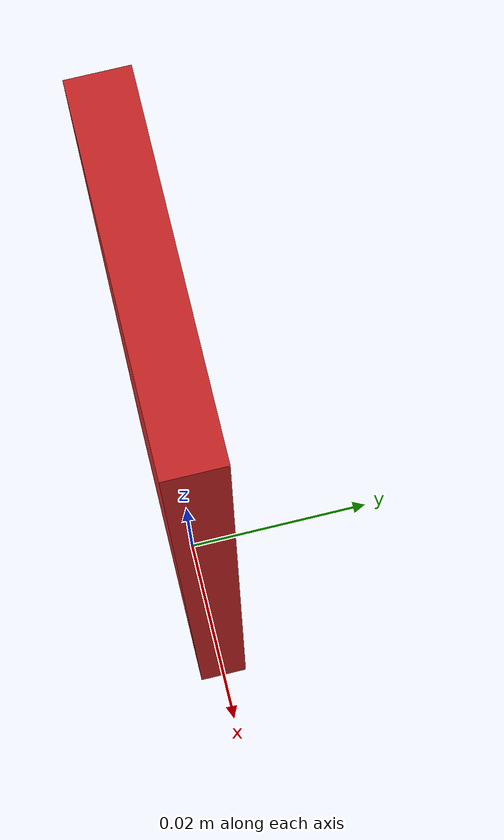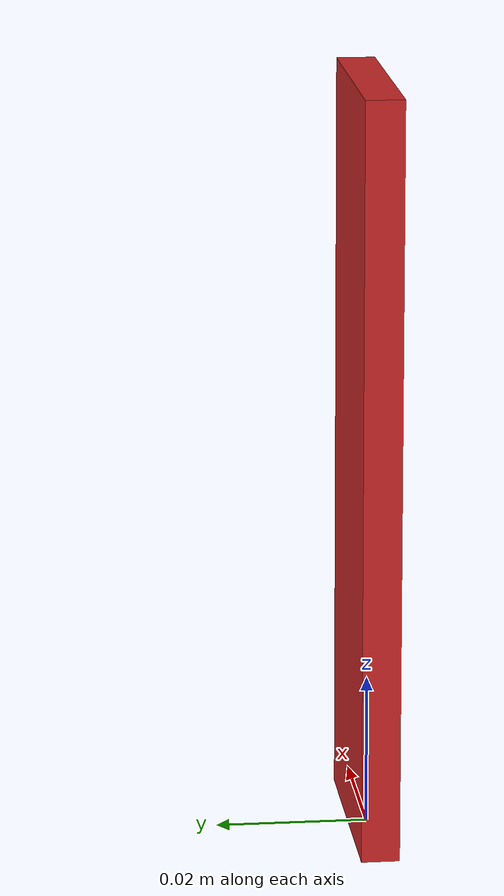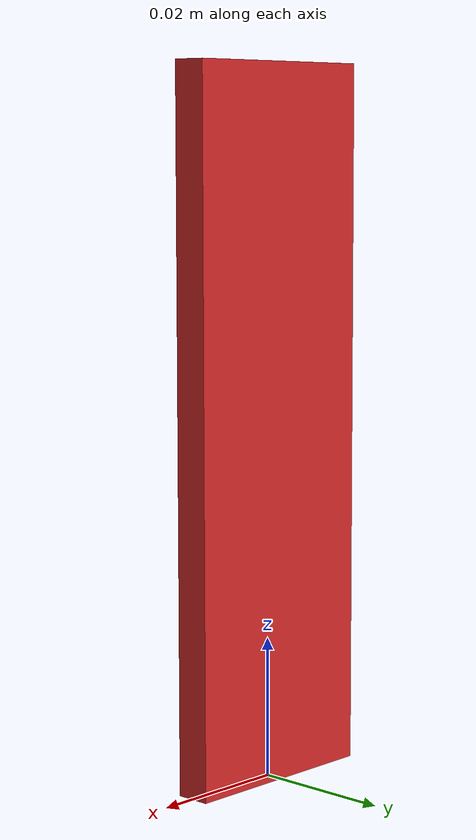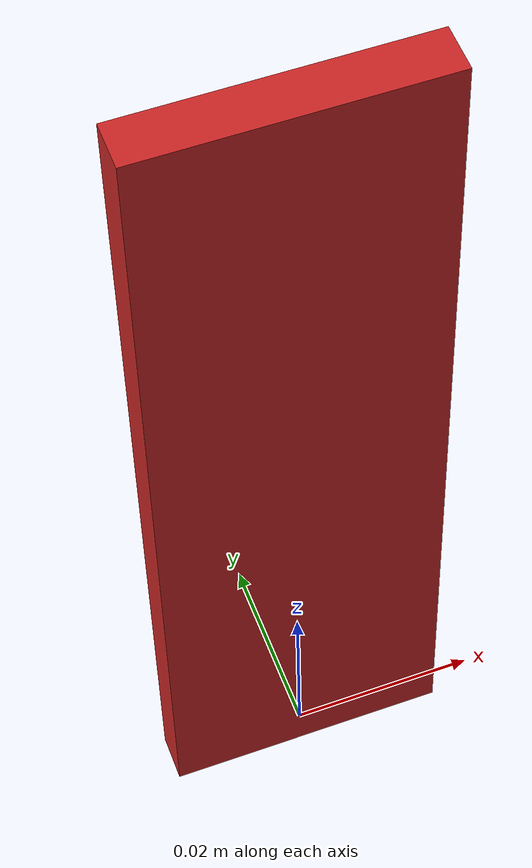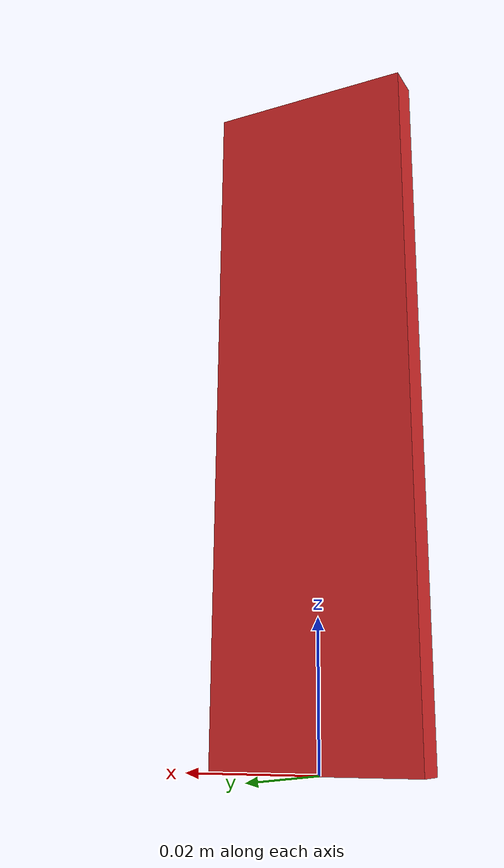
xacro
<?xml version="1.0" ?>
<robot name="box" xmlns:xacro="http://www.ros.org/wiki/xacro">
	<link name="base_link">
		<visual>
			<origin xyz="0 0 0.05" rpy="0 0 0"/>
			<geometry>
				<box size="0.03 0.005 0.1"/>
			</geometry>
		</visual>

		<inertial>
			<origin xyz="0 0 0.05" rpy="0 0 0"/>
			<mass value="1e-5"/>
			<inertia
        		ixx="1e-6" ixy="0.0" ixz="0.0"
        		iyy="1e-6" iyz="0.0"
        		izz="1e-6"/>
		</inertial>
	</link>

	<gazebo reference="base_link">
		<turnGravityOff>true</turnGravityOff>
		<mu1>1000000.0</mu1>
		<mu2>1000000.0</mu2>
		<material>Gazebo/RedTransparent</material>
	</gazebo>
</robot>
